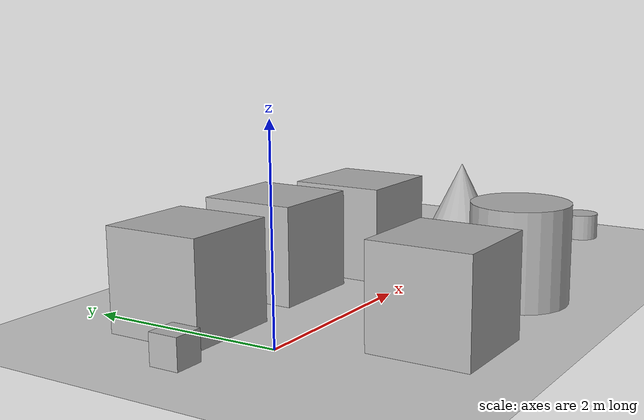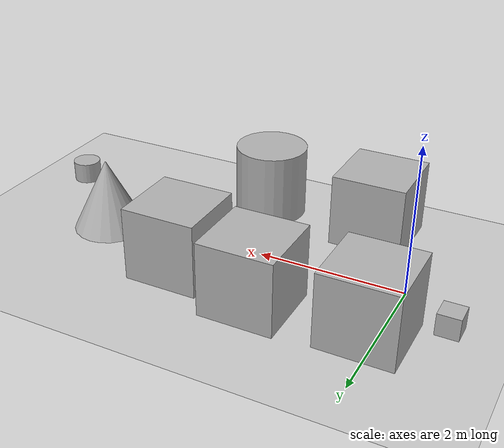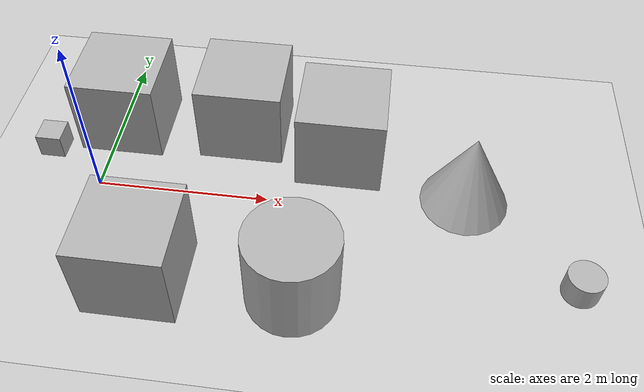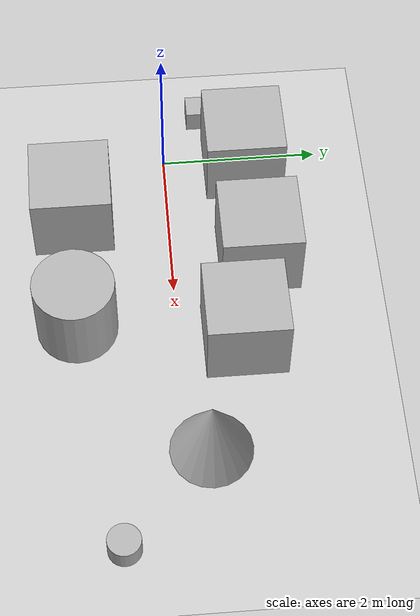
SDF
<sdf version='1.10'>
  <world name='empty'>
    <physics name='1ms' type='ignored'>
      <max_step_size>0.001</max_step_size>
      <real_time_factor>1</real_time_factor>
      <real_time_update_rate>1000</real_time_update_rate>
    </physics>
    <plugin name='gz::sim::systems::Physics' filename='gz-sim-physics-system'/>
    <plugin name='gz::sim::systems::UserCommands' filename='gz-sim-user-commands-system'/>
    <plugin name='gz::sim::systems::SceneBroadcaster' filename='gz-sim-scene-broadcaster-system'/>
    <plugin name='gz::sim::systems::Contact' filename='gz-sim-contact-system'/>
    <plugin name='gz::sim::systems::Imu' filename='gz-sim-imu-system'/>
    <gravity>0 0 -9.8000000000000007</gravity>
    <magnetic_field>5.5644999999999998e-06 2.2875799999999999e-05 -4.2388400000000002e-05</magnetic_field>
    <atmosphere type='adiabatic'/>
    <scene>
      <ambient>0.400000006 0.400000006 0.400000006 1</ambient>
      <background>0.699999988 0.699999988 0.699999988 1</background>
      <shadows>true</shadows>
    </scene>
    <model name='ground_plane'>
      <static>true</static>
      <link name='link'>
        <collision name='collision'>
          <geometry>
            <plane>
              <normal>0 0 1</normal>
              <size>100 100</size>
            </plane>
          </geometry>
          <surface>
            <friction>
              <ode/>
            </friction>
            <bounce/>
            <contact/>
          </surface>
        </collision>
        <visual name='visual'>
          <geometry>
            <plane>
              <normal>0 0 1</normal>
              <size>100 100</size>
            </plane>
          </geometry>
          <material>
            <ambient>0.800000012 0.800000012 0.800000012 1</ambient>
            <diffuse>0.800000012 0.800000012 0.800000012 1</diffuse>
            <specular>0.800000012 0.800000012 0.800000012 1</specular>
          </material>
        </visual>
        <pose>0 0 0 0 0 0</pose>
        <inertial>
          <pose>0 0 0 0 0 0</pose>
          <mass>1</mass>
          <inertia>
            <ixx>1</ixx>
            <ixy>0</ixy>
            <ixz>0</ixz>
            <iyy>1</iyy>
            <iyz>0</iyz>
            <izz>1</izz>
          </inertia>
        </inertial>
        <enable_wind>false</enable_wind>
      </link>
      <pose>0 0 0 0 0 0</pose>
      <self_collide>false</self_collide>
    </model>
    <model name='cylinder'>
      <pose>5.4321765899658203 -0.80000001192092896 0.14999900273846253 -1.8778305341563368e-19 -5.9640388673443808e-19 1.3566933004077802e-20</pose>
      <link name='cylinder_link'>
        <inertial>
          <inertia>
            <ixx>0.14499999999999999</ixx>
            <ixy>0</ixy>
            <ixz>0</ixz>
            <iyy>0.14499999999999999</iyy>
            <iyz>0</iyz>
            <izz>0.125</izz>
          </inertia>
          <mass>1</mass>
          <pose>0 0 0 0 0 0</pose>
        </inertial>
        <collision name='cylinder_collision'>
          <geometry>
            <cylinder>
              <radius>0.20000000000000001</radius>
              <length>0.29999999999999999</length>
            </cylinder>
          </geometry>
          <surface>
            <friction>
              <ode/>
            </friction>
            <bounce/>
            <contact/>
          </surface>
        </collision>
        <visual name='cylinder_visual'>
          <geometry>
            <cylinder>
              <radius>0.20000000000000001</radius>
              <length>0.29999999999999999</length>
            </cylinder>
          </geometry>
          <material>
            <ambient>0.300000012 0.300000012 0.300000012 1</ambient>
            <diffuse>0.699999988 0.699999988 0.699999988 1</diffuse>
            <specular>1 1 1 1</specular>
          </material>
          <plugin name='gz::sim::systems::Label' filename='gz-sim-label-system'>
            <label>10</label>
          </plugin>
        </visual>
        <pose>0 0 0 0 0 0</pose>
        <enable_wind>false</enable_wind>
      </link>
      <static>false</static>
      <self_collide>false</self_collide>
    </model>
    <model name='box'>
      <pose>-0.69999999999999996 0.5 0.14999942692161244 -3.4495969753094586e-19 -2.6505143524190671e-19 1.039011443229859e-20</pose>
      <link name='box_link'>
        <inertial>
          <inertia>
            <ixx>0.16666</ixx>
            <ixy>0</ixy>
            <ixz>0</ixz>
            <iyy>0.16666</iyy>
            <iyz>0</iyz>
            <izz>0.16666</izz>
          </inertia>
          <mass>1</mass>
          <pose>0 0 0 0 0 0</pose>
        </inertial>
        <collision name='box_collision'>
          <geometry>
            <box>
              <size>0.29999999999999999 0.29999999999999999 0.29999999999999999</size>
            </box>
          </geometry>
          <surface>
            <friction>
              <ode/>
            </friction>
            <bounce/>
            <contact/>
          </surface>
        </collision>
        <visual name='box_visual'>
          <geometry>
            <box>
              <size>0.29999999999999999 0.29999999999999999 0.29999999999999999</size>
            </box>
          </geometry>
          <material>
            <ambient>0.300000012 0.300000012 0.300000012 1</ambient>
            <diffuse>0.699999988 0.699999988 0.699999988 1</diffuse>
            <specular>1 1 1 1</specular>
          </material>
        </visual>
        <pose>0 0 0 0 0 0</pose>
        <enable_wind>false</enable_wind>
      </link>
      <static>false</static>
      <self_collide>false</self_collide>
    </model>
    <model name='box_0'>
      <pose>0.1175948070627908 1.0284645144695435 0.49999999990199806 6.2287739151293738e-22 9.3279666454713669e-22 -3.6315533669320137e-22</pose>
      <link name='box_link'>
        <inertial>
          <inertia>
            <ixx>0.16666</ixx>
            <ixy>0</ixy>
            <ixz>0</ixz>
            <iyy>0.16666</iyy>
            <iyz>0</iyz>
            <izz>0.16666</izz>
          </inertia>
          <mass>1</mass>
          <pose>0 0 0 0 0 0</pose>
        </inertial>
        <collision name='box_collision'>
          <geometry>
            <box>
              <size>1 1 1</size>
            </box>
          </geometry>
          <surface>
            <friction>
              <ode/>
            </friction>
            <bounce/>
            <contact/>
          </surface>
        </collision>
        <visual name='box_visual'>
          <geometry>
            <box>
              <size>1 1 1</size>
            </box>
          </geometry>
          <material>
            <ambient>0.300000012 0.300000012 0.300000012 1</ambient>
            <diffuse>0.699999988 0.699999988 0.699999988 1</diffuse>
            <specular>1 1 1 1</specular>
          </material>
        </visual>
        <pose>0 0 0 0 0 0</pose>
        <enable_wind>false</enable_wind>
      </link>
      <static>false</static>
      <self_collide>false</self_collide>
    </model>
    <model name='box_1'>
      <pose>0.82973219186558289 -1.2091100963298018 0.49999999990199806 6.2287739151293738e-22 9.3279666454713669e-22 -3.6315533669320137e-22</pose>
      <link name='box_link'>
        <inertial>
          <inertia>
            <ixx>0.16666</ixx>
            <ixy>0</ixy>
            <ixz>0</ixz>
            <iyy>0.16666</iyy>
            <iyz>0</iyz>
            <izz>0.16666</izz>
          </inertia>
          <mass>1</mass>
          <pose>0 0 0 0 0 0</pose>
        </inertial>
        <collision name='box_collision'>
          <geometry>
            <box>
              <size>1 1 1</size>
            </box>
          </geometry>
          <surface>
            <friction>
              <ode/>
            </friction>
            <bounce/>
            <contact/>
          </surface>
        </collision>
        <visual name='box_visual'>
          <geometry>
            <box>
              <size>1 1 1</size>
            </box>
          </geometry>
          <material>
            <ambient>0.300000012 0.300000012 0.300000012 1</ambient>
            <diffuse>0.699999988 0.699999988 0.699999988 1</diffuse>
            <specular>1 1 1 1</specular>
          </material>
        </visual>
        <pose>0 0 0 0 0 0</pose>
        <enable_wind>false</enable_wind>
      </link>
      <static>false</static>
      <self_collide>false</self_collide>
    </model>
    <model name='box_2'>
      <pose>1.5765504628699718 1.0944702314746539 0.49999999990199806 6.2287739151293738e-22 9.3279666454713669e-22 -3.6315533669320137e-22</pose>
      <link name='box_link'>
        <inertial>
          <inertia>
            <ixx>0.16666</ixx>
            <ixy>0</ixy>
            <ixz>0</ixz>
            <iyy>0.16666</iyy>
            <iyz>0</iyz>
            <izz>0.16666</izz>
          </inertia>
          <mass>1</mass>
          <pose>0 0 0 0 0 0</pose>
        </inertial>
        <collision name='box_collision'>
          <geometry>
            <box>
              <size>1 1 1</size>
            </box>
          </geometry>
          <surface>
            <friction>
              <ode/>
            </friction>
            <bounce/>
            <contact/>
          </surface>
        </collision>
        <visual name='box_visual'>
          <geometry>
            <box>
              <size>1 1 1</size>
            </box>
          </geometry>
          <material>
            <ambient>0.300000012 0.300000012 0.300000012 1</ambient>
            <diffuse>0.699999988 0.699999988 0.699999988 1</diffuse>
            <specular>1 1 1 1</specular>
          </material>
        </visual>
        <pose>0 0 0 0 0 0</pose>
        <enable_wind>false</enable_wind>
      </link>
      <static>false</static>
      <self_collide>false</self_collide>
    </model>
    <model name='cylinder_0'>
      <pose>2.455673792833533 -1.222783145592476 0.49999942638036005 1.0474923850643769e-19 -2.8362594792989237e-19 1.8236427880301716e-20</pose>
      <link name='cylinder_link'>
        <inertial>
          <inertia>
            <ixx>0.14580000000000001</ixx>
            <ixy>0</ixy>
            <ixz>0</ixz>
            <iyy>0.14580000000000001</iyy>
            <iyz>0</iyz>
            <izz>0.125</izz>
          </inertia>
          <mass>1</mass>
          <pose>0 0 0 0 0 0</pose>
        </inertial>
        <collision name='cylinder_collision'>
          <geometry>
            <cylinder>
              <radius>0.5</radius>
              <length>1</length>
            </cylinder>
          </geometry>
          <surface>
            <friction>
              <ode/>
            </friction>
            <bounce/>
            <contact/>
          </surface>
        </collision>
        <visual name='cylinder_visual'>
          <geometry>
            <cylinder>
              <radius>0.5</radius>
              <length>1</length>
            </cylinder>
          </geometry>
          <material>
            <ambient>0.300000012 0.300000012 0.300000012 1</ambient>
            <diffuse>0.699999988 0.699999988 0.699999988 1</diffuse>
            <specular>1 1 1 1</specular>
          </material>
        </visual>
        <pose>0 0 0 0 0 0</pose>
        <enable_wind>false</enable_wind>
      </link>
      <static>false</static>
      <self_collide>false</self_collide>
    </model>
    <model name='box_3'>
      <pose>2.7764495408051335 0.81004706009223326 0.49999999990199806 -2.6020270235367844e-21 2.8123058013609069e-22 -1.4428456090560715e-22</pose>
      <link name='box_link'>
        <inertial>
          <inertia>
            <ixx>0.16666</ixx>
            <ixy>0</ixy>
            <ixz>0</ixz>
            <iyy>0.16666</iyy>
            <iyz>0</iyz>
            <izz>0.16666</izz>
          </inertia>
          <mass>1</mass>
          <pose>0 0 0 0 0 0</pose>
        </inertial>
        <collision name='box_collision'>
          <geometry>
            <box>
              <size>1 1 1</size>
            </box>
          </geometry>
          <surface>
            <friction>
              <ode/>
            </friction>
            <bounce/>
            <contact/>
          </surface>
        </collision>
        <visual name='box_visual'>
          <geometry>
            <box>
              <size>1 1 1</size>
            </box>
          </geometry>
          <material>
            <ambient>0.300000012 0.300000012 0.300000012 1</ambient>
            <diffuse>0.699999988 0.699999988 0.699999988 1</diffuse>
            <specular>1 1 1 1</specular>
          </material>
        </visual>
        <pose>0 0 0 0 0 0</pose>
        <enable_wind>false</enable_wind>
      </link>
      <static>false</static>
      <self_collide>false</self_collide>
    </model>
    <model name='cone'>
      <pose>4.2433921191893207 0.28417730918106138 0.49999999993296756 5.2545381107615467e-17 -7.7132841040656683e-10 3.9420885099682781e-23</pose>
      <link name='cone_link'>
        <inertial>
          <inertia>
            <ixx>0.074999999999999997</ixx>
            <ixy>0</ixy>
            <ixz>0</ixz>
            <iyy>0.074999999999999997</iyy>
            <iyz>0</iyz>
            <izz>0.074999999999999997</izz>
          </inertia>
          <mass>1</mass>
          <pose>0 0 0 0 0 0</pose>
        </inertial>
        <collision name='cone_collision'>
          <geometry>
            <cone>
              <radius>0.5</radius>
              <length>1</length>
            </cone>
          </geometry>
          <surface>
            <friction>
              <ode/>
            </friction>
            <bounce/>
            <contact/>
          </surface>
        </collision>
        <visual name='cone_visual'>
          <geometry>
            <cone>
              <radius>0.5</radius>
              <length>1</length>
            </cone>
          </geometry>
          <material>
            <ambient>0.300000012 0.300000012 0.300000012 1</ambient>
            <diffuse>0.699999988 0.699999988 0.699999988 1</diffuse>
            <specular>1 1 1 1</specular>
          </material>
        </visual>
        <pose>0 0 0 0 0 0</pose>
        <enable_wind>false</enable_wind>
      </link>
      <static>false</static>
      <self_collide>false</self_collide>
    </model>
    <light name='sun' type='directional'>
      <pose>0 0 10 0 0 0</pose>
      <cast_shadows>true</cast_shadows>
      <intensity>1</intensity>
      <direction>-0.5 0.10000000000000001 -0.90000000000000002</direction>
      <diffuse>0.800000012 0.800000012 0.800000012 1</diffuse>
      <specular>0.200000003 0.200000003 0.200000003 1</specular>
      <attenuation>
        <range>1000</range>
        <linear>0.01</linear>
        <constant>0.90000000000000002</constant>
        <quadratic>0.001</quadratic>
      </attenuation>
      <spot>
        <inner_angle>0</inner_angle>
        <outer_angle>0</outer_angle>
        <falloff>0</falloff>
      </spot>
    </light>
  </world>
</sdf>
